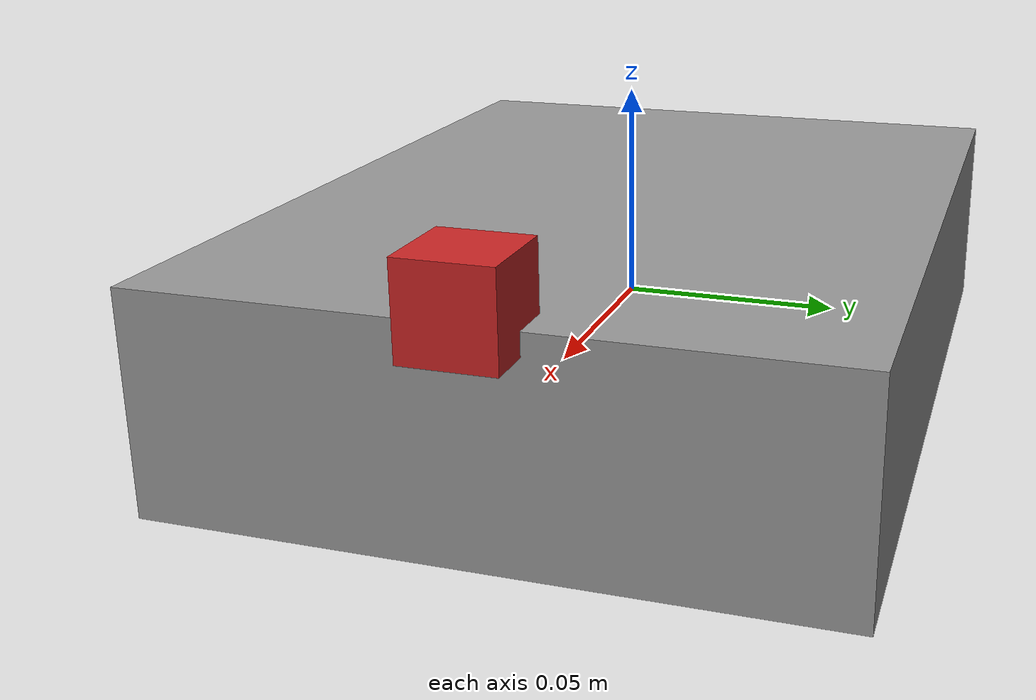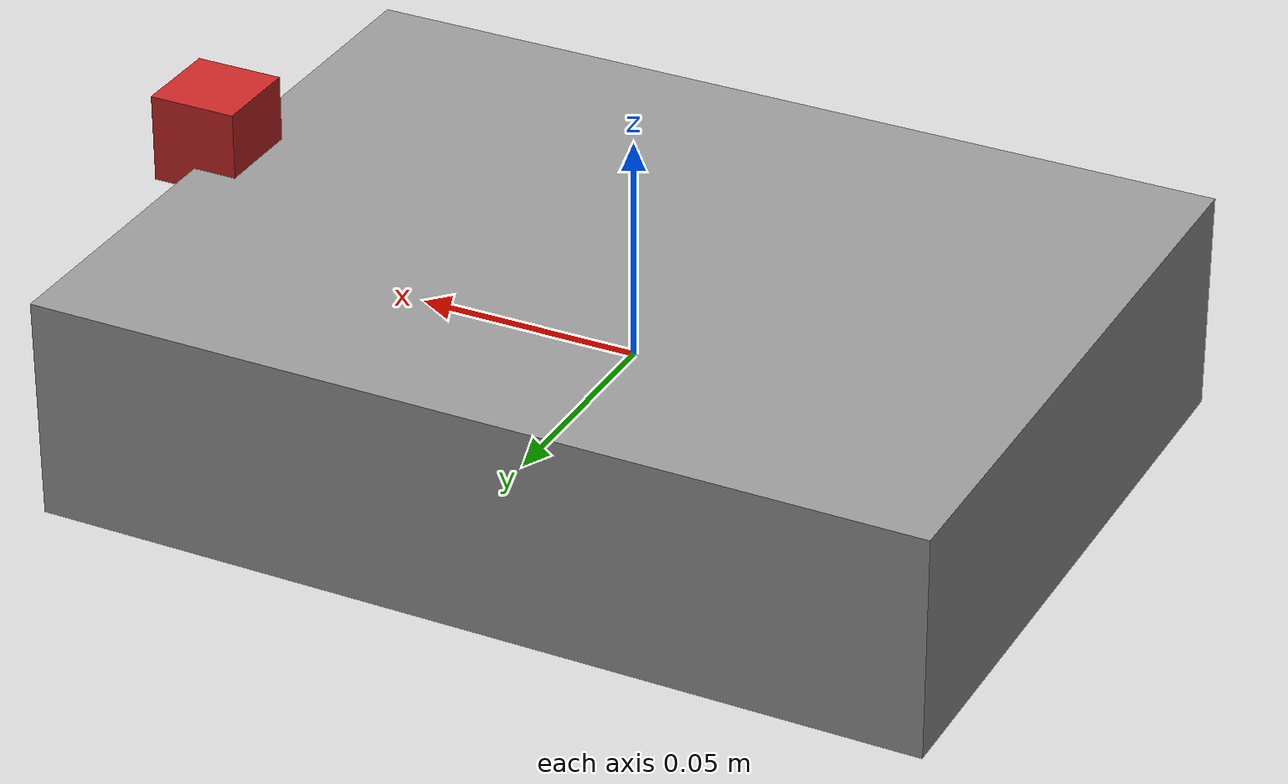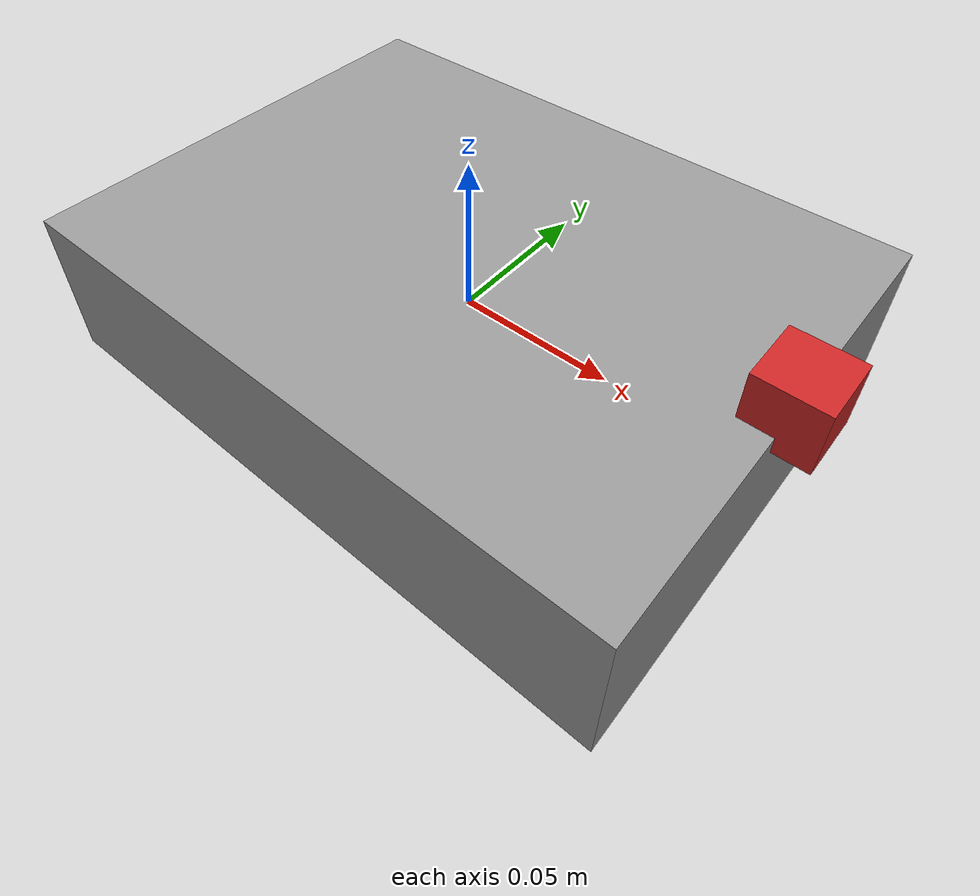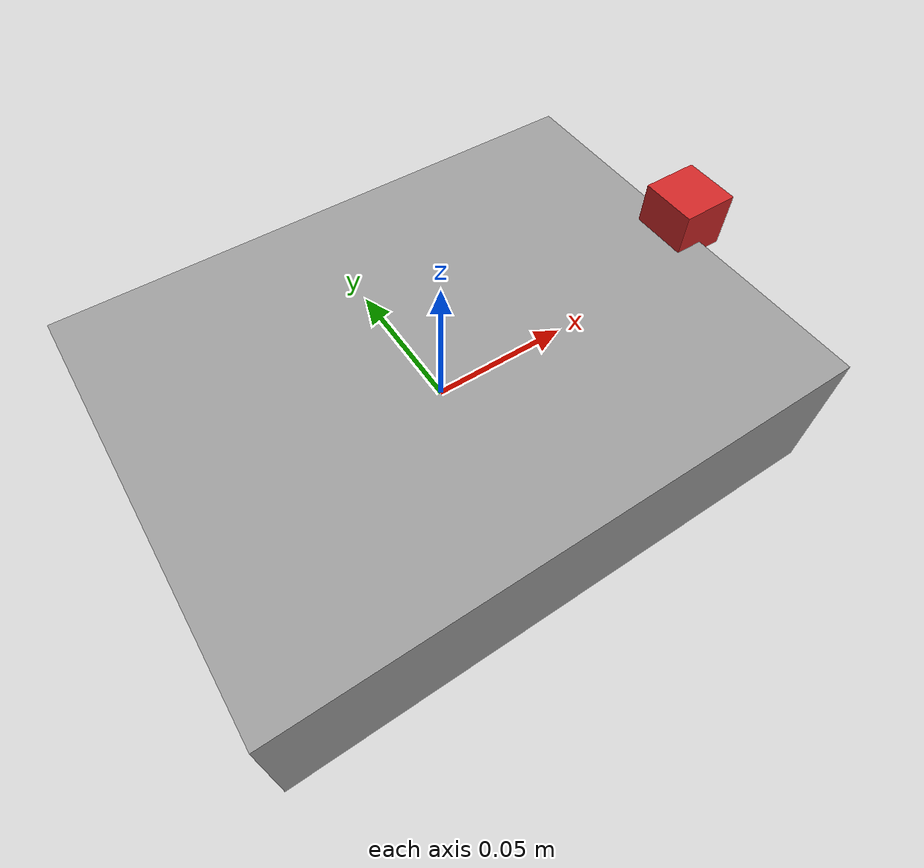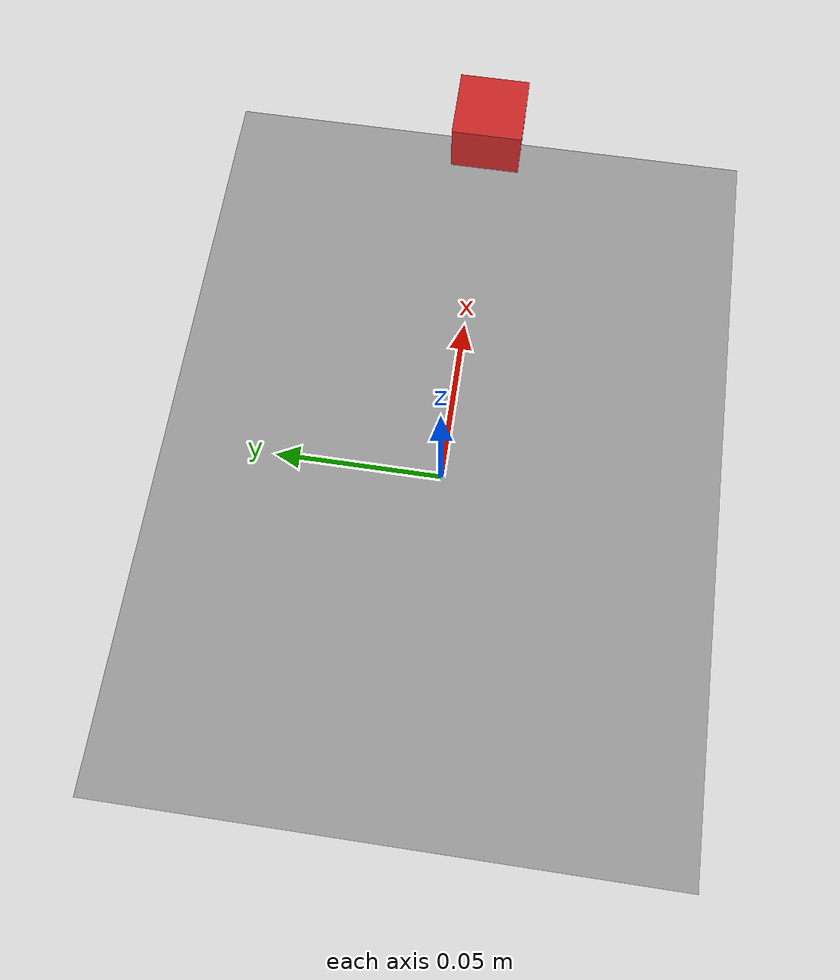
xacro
<?xml version="1.0"?>
<robot name="ev3_robot" xmlns:xacro="http://www.ros.org/wiki/xacro">

    <ros2_control name="TouchInterface" type="system">
    <hardware>
        <plugin>sensor_touch_interface/SensorTouchInterface</plugin>
    </hardware>
    </ros2_control>

  <!-- Base du robot -->
  <link name="base_link">
    <visual>
      <geometry>
        <box size="0.2 0.15 0.05"/>
      </geometry>
      <material name="gray"/>
    </visual>
    <collision>
      <geometry>
        <box size="0.2 0.15 0.05"/>
      </geometry>
    </collision>
    <inertial>
      <mass value="1.0"/>
      <origin xyz="0 0 0" rpy="0 0 0"/>
      <inertia ixx="0.01" iyy="0.01" izz="0.01" ixy="0.0" ixz="0.0" iyz="0.0"/>
    </inertial>
  </link>

  <!-- Lien du capteur -->
  <link name="touch_sensor_link">
    <visual>
      <geometry>
        <box size="0.02 0.02 0.02"/>
      </geometry>
      <material name="red"/>
    </visual>
    <collision>
      <geometry>
        <box size="0.02 0.02 0.02"/>
      </geometry>
    </collision>
    <inertial>
      <mass value="0.05"/>
      <origin xyz="0 0 0" rpy="0 0 0"/>
      <inertia ixx="0.0001" iyy="0.0001" izz="0.0001" ixy="0.0" ixz="0.0" iyz="0.0"/>
    </inertial>
  </link>

  <!-- Joint fixe pour attacher le capteur -->
  <joint name="touch_sensor_joint" type="fixed">
    <parent link="base_link"/>
    <child link="touch_sensor_link"/>
    <origin xyz="0.1 0 0.03" rpy="0 0 0"/>
  </joint>

  <!-- Plugin Gazebo Ignition pour le capteur de contact -->
  <gazebo>
    <plugin name="touch_sensor_plugin" filename="libTouchSensorPlugin.so">
      <topic>/touch_sensor/state</topic>
      <frame_id>touch_sensor_link</frame_id>
      <collision_name>touch_sensor_link_collision</collision_name>
    </plugin>
  </gazebo>

</robot>
